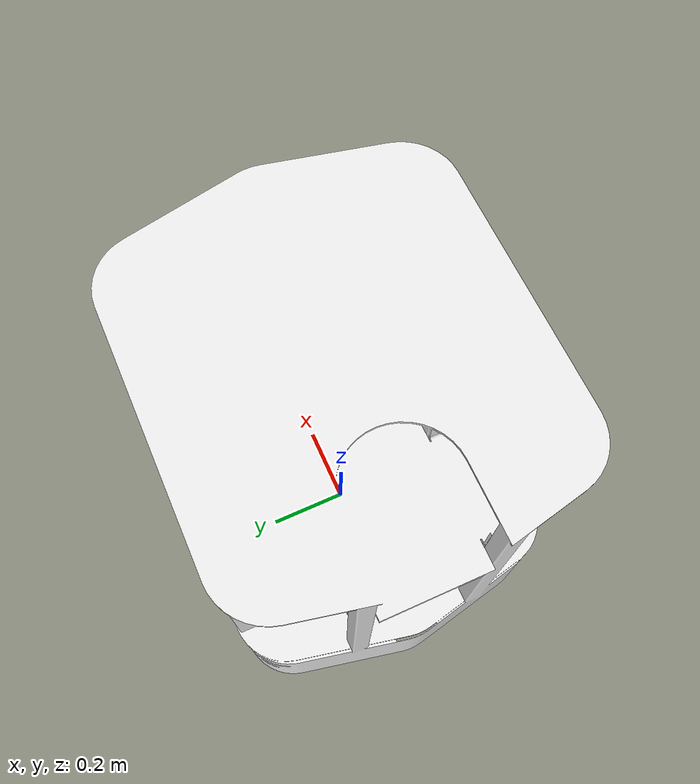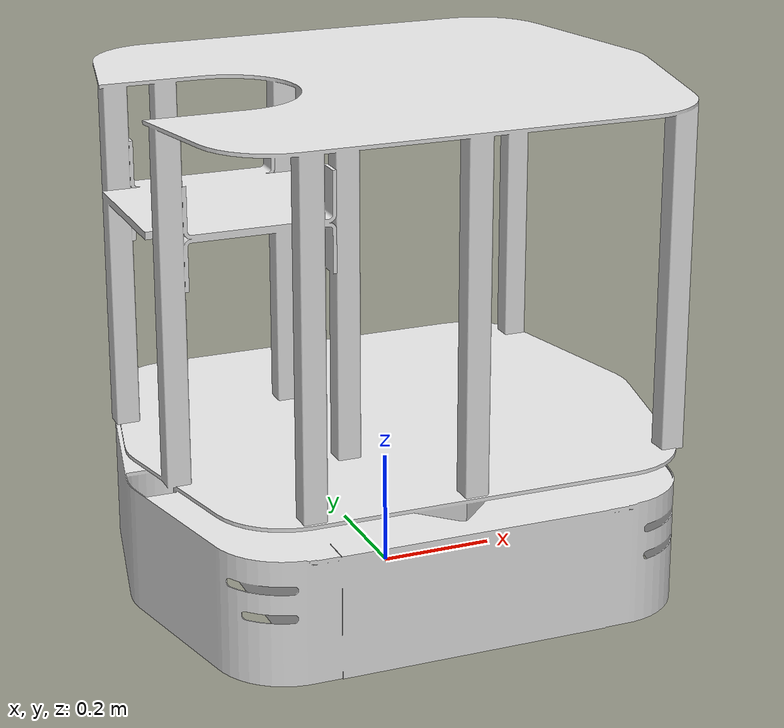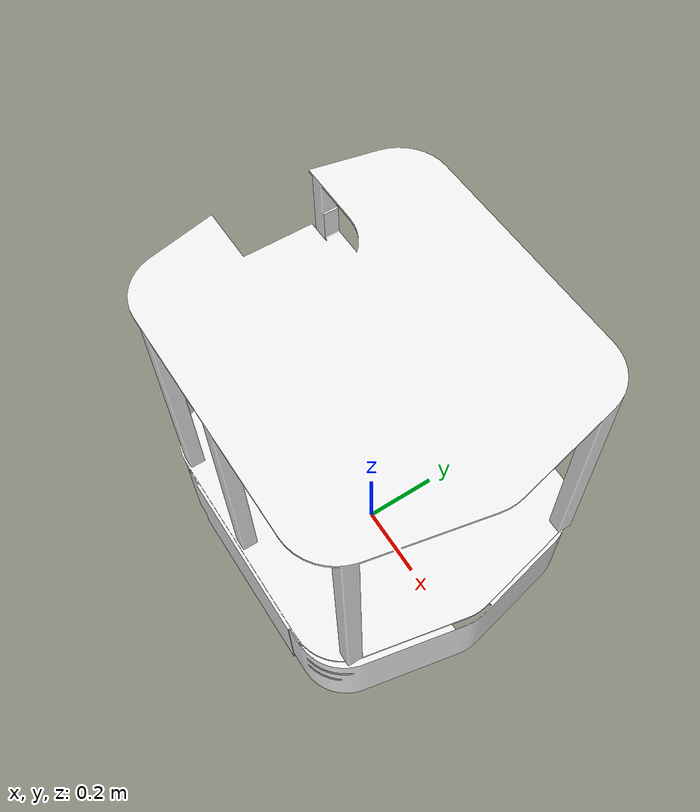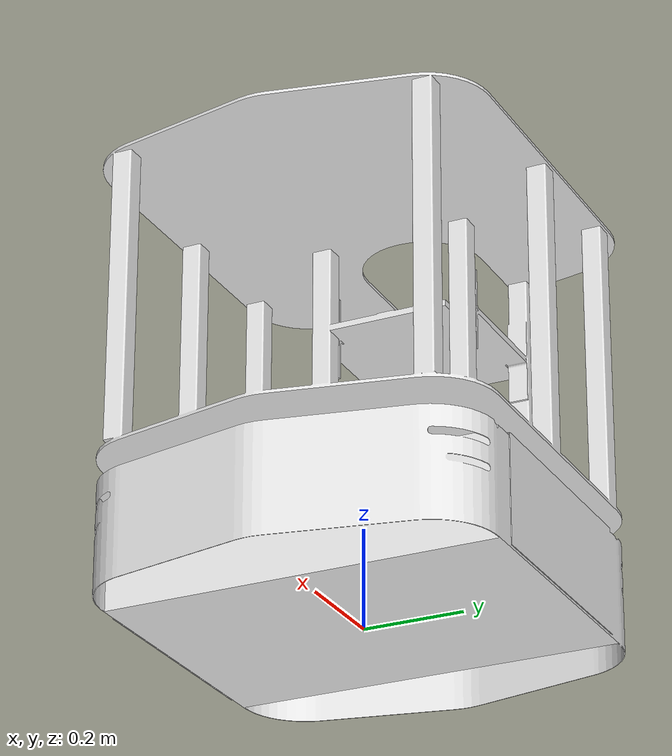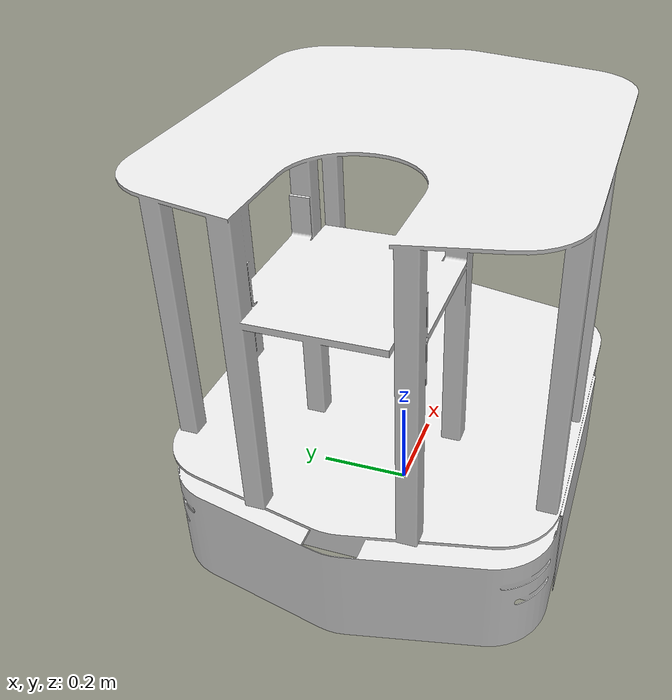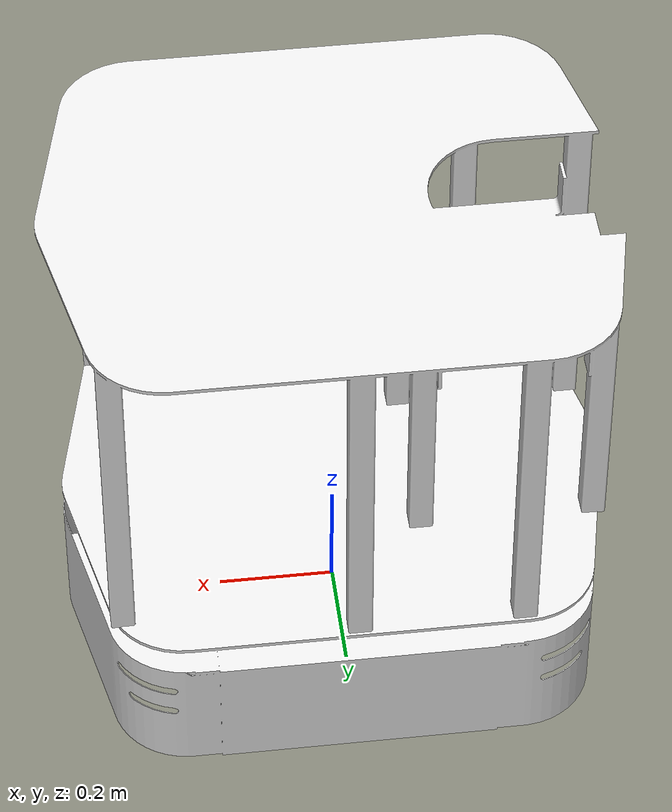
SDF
<?xml version="1.0" ?>
<sdf version="1.5">
  <model name="ridgeback">
    <static>true</static>
    <link name="link">
      <visual name="visual">
        <geometry>
          <mesh>
            <uri>model://ridgeback/meshes/ridgeback.dae</uri>
          </mesh>
        </geometry>
        <material>
          <script>
            <uri>file://media/materials/scripts/gazebo.material</uri>
            <name>Gazebo/White</name>
          </script>
          <ambient>1 1 1 1</ambient>
        </material>
      </visual>
      <!-- collision -->
      <collision name="collision">
        <geometry>
          <mesh>
            <uri>model://ridgeback/collision/body-collision.stl</uri>
          </mesh>
        </geometry>
        <surface>
          <friction>
            <ode>
              <mu>10</mu>
              <mu2>10</mu2>
            </ode>
          </friction>
        </surface>
      </collision>
    </link>
  </model>

</sdf>
